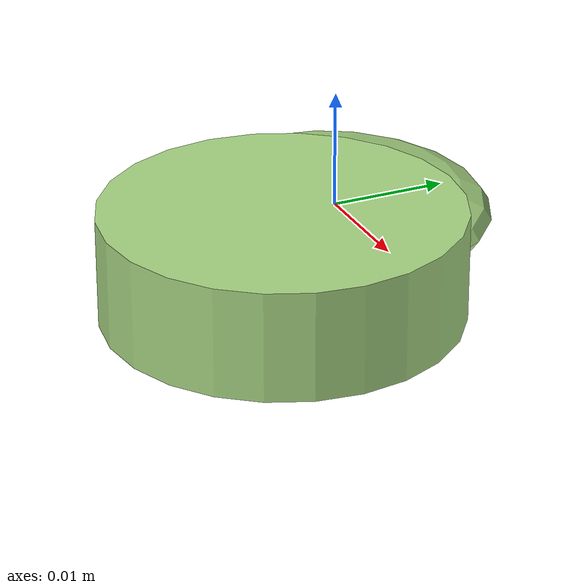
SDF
<?xml version="1.0" ?>
<!-- |    This document was autogenerated by xmacro from data/veggie_template/veggie_base.sdf.xacro  | -->
<!-- |    EDITING THIS FILE BY HAND IS NOT RECOMMENDED                                               | -->
<sdf version="1.8">
	<!-- Parameters -->
	<!-- Base -->
	<!-- Joint 0 -->
	<!-- Link 1 -->
	<!-- Joint 1 -->
	<!-- Link 2 -->
	<!-- Primitives -->
	<!-- All dimensions are half -->
	<!-- Object -->
	<model name="veggie">
		<!-- link0 -->
		<link name="link0">
			<inertial>
				<mass>0.0024102891458842503</mass>
				<inertia>
					<ixx>8.489067832791415e-08</ixx>
					<ixy>0</ixy>
					<ixz>0</ixz>
					<iyy>9.95212735108315e-08</iyy>
					<iyz>0</iyz>
					<izz>1.7461113223943613e-07</izz>
				</inertia>
			</inertial>
			<visual name="link0_visual">
				<pose>0 0 0 0 0 0</pose>
				<geometry>
					<ellipsoid>
						<radii>0.014010185439379676 0.012881576203415547 0.003188354695775299</radii>
					</ellipsoid>
				</geometry>
				<material>
					<ambient>0.659 0.839 0.514 1</ambient>
					<diffuse>0.659 0.839 0.514 1</diffuse>
					<specular>0 0 0 0</specular>
					<emissive>0 0 0 1</emissive>
				</material>
			</visual>
			<collision name="link0_collision">
				<pose>0 0 0 0 0 0 </pose>
				<geometry>
					<ellipsoid>
						<radii>0.014010185439379676 0.012881576203415547 0.003188354695775299</radii>
					</ellipsoid>
				</geometry>
			</collision>
		</link>
		<!-- link1 -->
		<joint name="joint0" type="fixed">
			<pose relative_to="link0">0.00889808987245159 -0.008872322061164062 0.0006143210199850882 0.0 0.0 0.0</pose>
			<parent>link0</parent>
			<child>link1</child>
		</joint>
		<link name="link1">
			<pose relative_to="joint0">0 0 0 0 0 0</pose>
			<inertial>
				<mass>0.0063174808127098485</mass>
				<inertia>
					<ixx>3.9133997060169293e-07</ixx>
					<ixy>0</ixy>
					<ixz>0</ixz>
					<iyy>3.9133997060169293e-07</iyy>
					<iyz>0</iyz>
					<izz>6.946380122696284e-07</izz>
				</inertia>
			</inertial>
			<visual name="link1_visual">
				<pose>0 0 0 0 0 0</pose>
				<geometry>
					<cylinder>
						<radius>0.014829356461457291</radius>
						<length>0.009144257221107815</length>
					</cylinder>
				</geometry>
				<material>
					<ambient>0.659 0.839 0.514 1</ambient>
					<diffuse>0.659 0.839 0.514 1</diffuse>
					<specular>0 0 0 0</specular>
					<emissive>0 0 0 1</emissive>
				</material>
			</visual>
			<collision name="link1_collision">
				<pose>0 0 0 0 0 0 </pose>
				<geometry>
					<cylinder>
						<radius>0.014829356461457291</radius>
						<length>0.009144257221107815</length>
					</cylinder>
				</geometry>
			</collision>
		</link>
		<!-- link2 -->
	</model>
</sdf>
